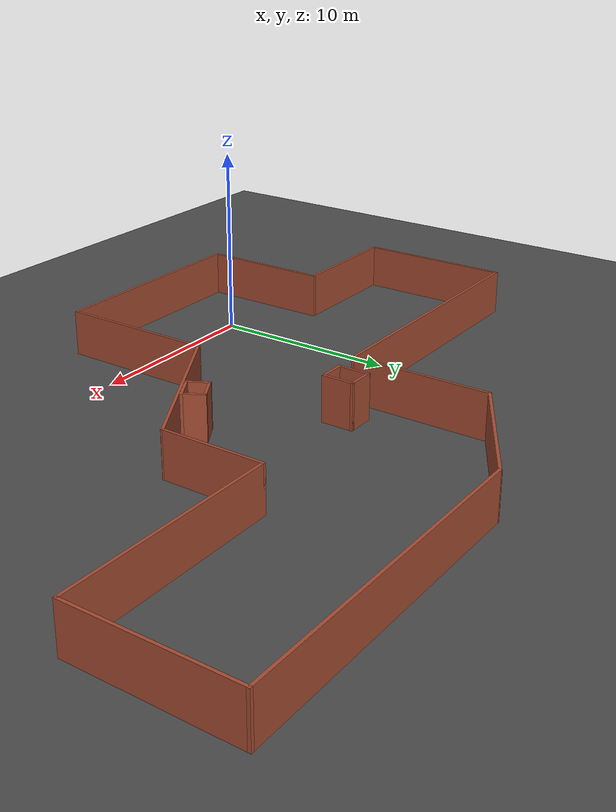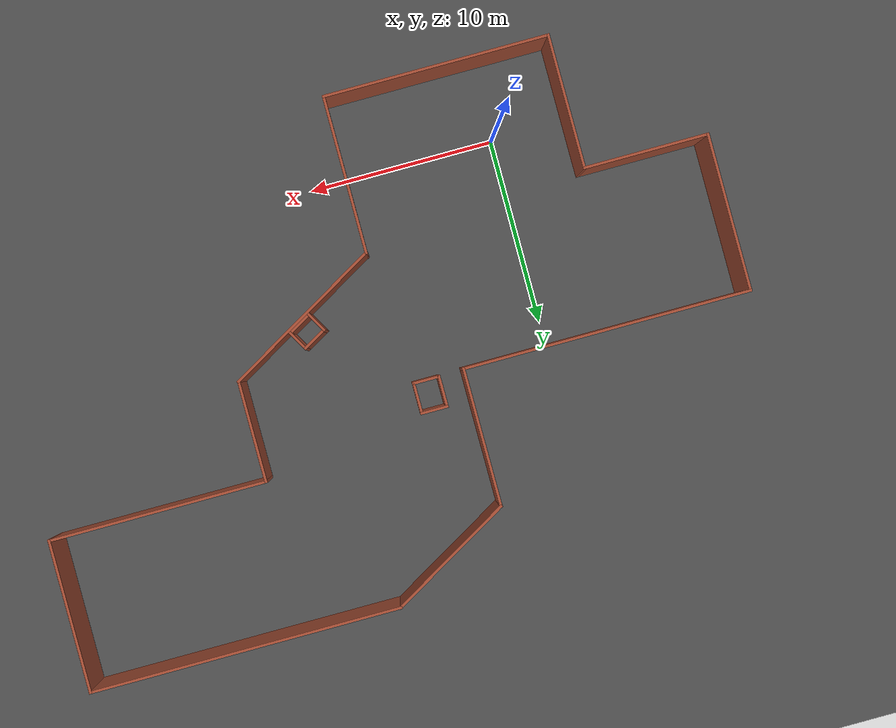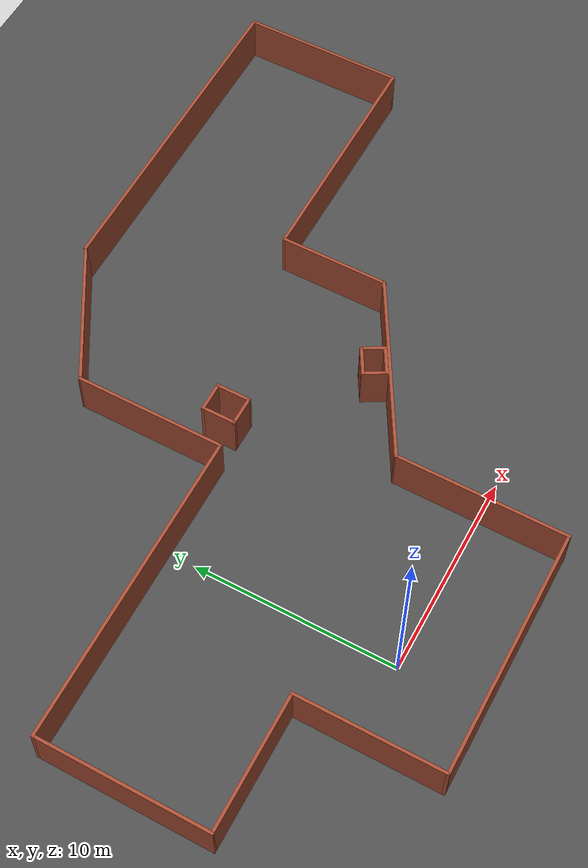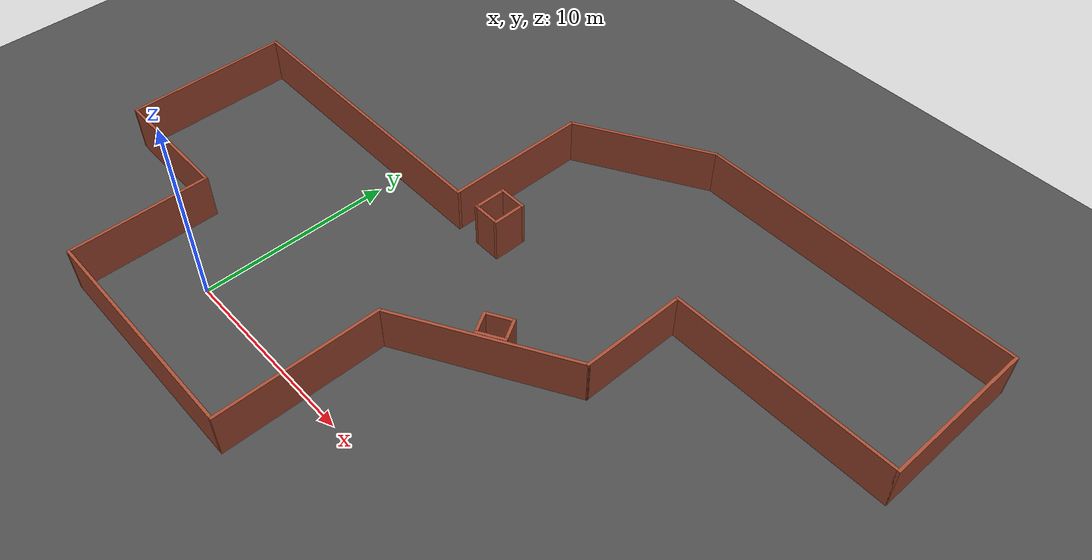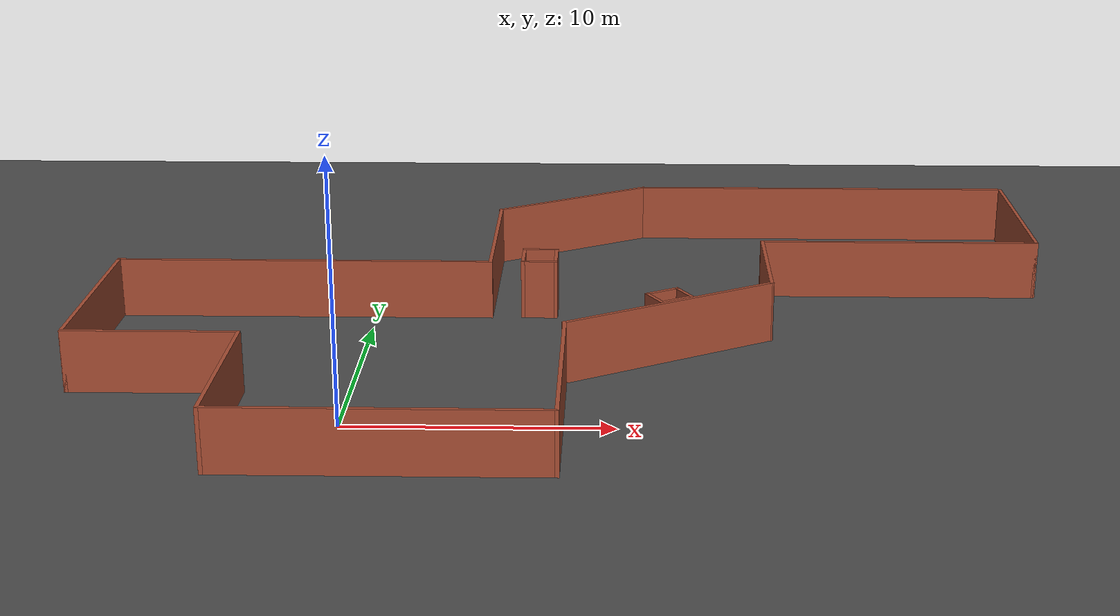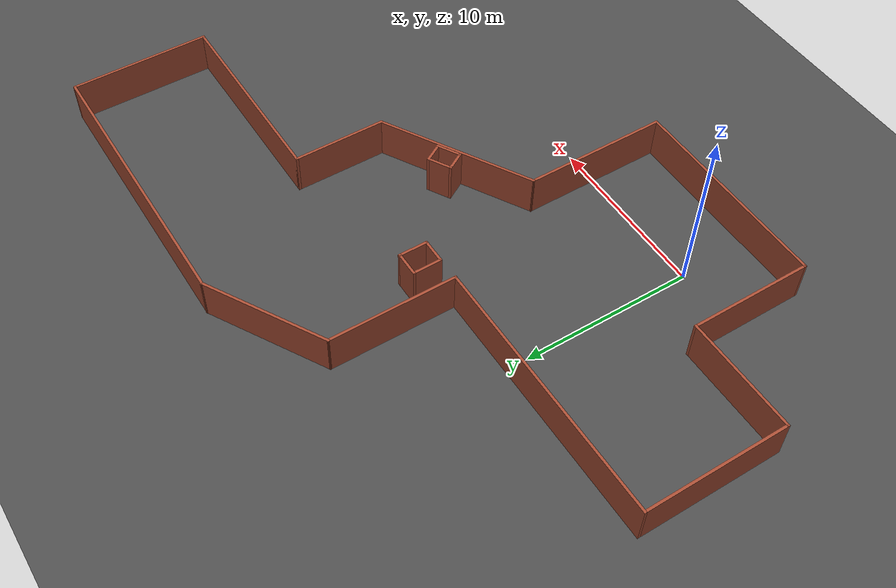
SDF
<sdf version="1.6">
 <world name="default">
  <light name="sun" type="directional">
   <pose>0 0 10 0 -0 0</pose>
   <diffuse>0.8 0.8 0.8 1</diffuse>
   <specular>0.2 0.2 0.2 1</specular>
   <attenuation>
    <range>1000</range>
    <constant>0.9</constant>
    <linear>0.01</linear>
    <quadratic>0.001</quadratic>
   </attenuation>
   <direction>-0.5 0.1 -0.9</direction>
  </light>
  <model name="ground_plane">
   <static>1</static>
   <link name="link">
    <collision name="collision">
     <geometry><plane><normal>0 0 1</normal><size>100 100</size></plane></geometry>
     <surface>
      <contact><collide_bitmask>65535</collide_bitmask></contact>
      <friction><ode><mu>100</mu><mu2>50</mu2></ode></friction>
     </surface>
    </collision>
    <visual name="visual">
     <cast_shadows>0</cast_shadows>
     <geometry><plane><normal>0 0 1</normal><size>100 100</size></plane></geometry>
     <material>
      <script><uri>file://media/materials/scripts/gazebo.material</uri><name>Gazebo/Grey</name></script>
     </material>
    </visual>
   </link>
  </model>
  <model name="asphalt_plane">
   <static>1</static>
   <link name="link">
    <collision name="collision"><geometry><box><size>200 200 0.1</size></box></geometry></collision>
    <visual name="visual">
     <cast_shadows>0</cast_shadows>
     <geometry><box><size>200 200 0.1</size></box></geometry>
     <material>
      <script>
       <uri>model://asphalt_plane/materials/scripts</uri>
       <uri>model://asphalt_plane/materials/textures</uri>
       <name>vrc/asphalt</name>
      </script>
     </material>
    </visual>
   </link>
  </model>
  <physics name="default_physics" default="0" type="ode">
   <ode>
    <solver>
     <type>quick</type>
     <iters>10</iters>
     <sor>1.3</sor>
     <use_dynamic_moi_rescaling>0</use_dynamic_moi_rescaling>
    </solver>
    <constraints>
     <cfm>0</cfm>
     <erp>0.2</erp>
     <contact_max_correcting_vel>100</contact_max_correcting_vel>
     <contact_surface_layer>0.001</contact_surface_layer>
    </constraints>
   </ode>
   <max_step_size>0.002</max_step_size>
   <real_time_factor>1</real_time_factor>
   <real_time_update_rate>500</real_time_update_rate>
  </physics>
  <gravity>0 0 -9.8066</gravity>
  <magnetic_field>6e-06 2.3e-05 -4.2e-05</magnetic_field>
  <atmosphere type="adiabatic"/>
  <scene><ambient>0.4 0.4 0.4 1</ambient><background>0.7 0.7 0.7 1</background><shadows>1</shadows></scene>
  <audio><device>default</device></audio>
  <spherical_coordinates>
   <surface_model>EARTH_WGS84</surface_model>
   <latitude_deg>0</latitude_deg>
   <longitude_deg>0</longitude_deg>
   <elevation>0</elevation>
   <heading_deg>0</heading_deg>
  </spherical_coordinates>
  <model name="complex_home_6">
   <pose>8.54184 9.10691 0 0 -0 0</pose>
   <link name="Wall_10">
    <collision name="Wall_10_Collision">
     <geometry><box><size>8.25 0.15 2.5</size></box></geometry>
     <pose>0 0 1.25 0 -0 0</pose>
    </collision>
    <visual name="Wall_10_Visual">
     <pose>0 0 1.25 0 -0 0</pose>
     <geometry><box><size>8.25 0.15 2.5</size></box></geometry>
     <material>
      <script><uri>file://media/materials/scripts/gazebo.material</uri><name>Gazebo/Bricks</name></script>
      <ambient>1 1 1 1</ambient>
     </material>
     <meta><layer>0</layer></meta>
    </visual>
    <pose>19.1576 9.17389 0 0 -0 1.5708</pose>
   </link>
   <link name="Wall_11">
    <collision name="Wall_11_Collision">
     <geometry><box><size>16.75 0.15 2.5</size></box></geometry>
     <pose>0 0 1.25 0 -0 0</pose>
    </collision>
    <visual name="Wall_11_Visual">
     <pose>0 0 1.25 0 -0 0</pose>
     <geometry><box><size>16.75 0.15 2.5</size></box></geometry>
     <material>
      <script><uri>file://media/materials/scripts/gazebo.material</uri><name>Gazebo/Bricks</name></script>
      <ambient>1 1 1 1</ambient>
     </material>
     <meta><layer>0</layer></meta>
    </visual>
    <pose>10.8576 13.2239 0 0 -0 3.14159</pose>
   </link>
   <link name="Wall_12">
    <collision name="Wall_12_Collision">
     <geometry><box><size>7.5 0.15 2.5</size></box></geometry>
     <pose>0 0 1.25 0 -0 0</pose>
    </collision>
    <visual name="Wall_12_Visual">
     <pose>0 0 1.25 0 -0 0</pose>
     <geometry><box><size>7.5 0.15 2.5</size></box></geometry>
     <material>
      <script><uri>file://media/materials/scripts/gazebo.material</uri><name>Gazebo/Bricks</name></script>
      <ambient>1 1 1 1</ambient>
     </material>
     <meta><layer>0</layer></meta>
    </visual>
    <pose>-0.625 11.3864 0 0 -0 -2.61799</pose>
   </link>
   <link name="Wall_13">
    <collision name="Wall_13_Collision">
     <geometry><box><size>7.5 0.15 2.5</size></box></geometry>
     <pose>0 0 1.25 0 -0 0</pose>
    </collision>
    <visual name="Wall_13_Visual">
     <pose>0 0 1.25 0 -0 0</pose>
     <geometry><box><size>7.5 0.15 2.5</size></box></geometry>
     <material>
      <script><uri>file://media/materials/scripts/gazebo.material</uri><name>Gazebo/Bricks</name></script>
      <ambient>1 1 1 1</ambient>
     </material>
     <meta><layer>0</layer></meta>
    </visual>
    <pose>-3.80764 5.87389 0 0 -0 -1.5708</pose>
   </link>
   <link name="Wall_14">
    <collision name="Wall_14_Collision">
     <geometry><box><size>15.5 0.15 2.5</size></box></geometry>
     <pose>0 0 1.25 0 -0 0</pose>
    </collision>
    <visual name="Wall_14_Visual">
     <pose>0 0 1.25 0 -0 0</pose>
     <geometry><box><size>15.5 0.15 2.5</size></box></geometry>
     <material>
      <script><uri>file://media/materials/scripts/gazebo.material</uri><name>Gazebo/Bricks</name></script>
      <ambient>1 1 1 1</ambient>
     </material>
     <meta><layer>0</layer></meta>
    </visual>
    <pose>-11.4826 2.19889 0 0 -0 3.14159</pose>
   </link>
   <link name="Wall_15">
    <collision name="Wall_15_Collision">
     <geometry><box><size>8.5 0.15 2.5</size></box></geometry>
     <pose>0 0 1.25 0 -0 0</pose>
    </collision>
    <visual name="Wall_15_Visual">
     <pose>0 0 1.25 0 -0 0</pose>
     <geometry><box><size>8.5 0.15 2.5</size></box></geometry>
     <material>
      <script><uri>file://media/materials/scripts/gazebo.material</uri><name>Gazebo/Bricks</name></script>
      <ambient>1 1 1 1</ambient>
     </material>
     <meta><layer>0</layer></meta>
    </visual>
    <pose>-19.1576 -1.97611 0 0 -0 -1.5708</pose>
   </link>
   <link name="Wall_16">
    <collision name="Wall_16_Collision">
     <geometry><box><size>6.75 0.15 2.5</size></box></geometry>
     <pose>0 0 1.25 0 -0 0</pose>
    </collision>
    <visual name="Wall_16_Visual">
     <pose>0 0 1.25 0 -0 0</pose>
     <geometry><box><size>6.75 0.15 2.5</size></box></geometry>
     <material>
      <script><uri>file://media/materials/scripts/gazebo.material</uri><name>Gazebo/Bricks</name></script>
      <ambient>1 1 1 1</ambient>
     </material>
     <meta><layer>0</layer></meta>
    </visual>
    <pose>-15.8576 -6.15111 0 0 -0 0</pose>
   </link>
   <link name="Wall_18">
    <collision name="Wall_18_Collision">
     <geometry><box><size>7.25047 0.15 2.5</size></box></geometry>
     <pose>0 0 1.25 0 -0 0</pose>
    </collision>
    <visual name="Wall_18_Visual">
     <pose>0 0 1.25 0 -0 0</pose>
     <geometry><box><size>7.25047 0.15 2.5</size></box></geometry>
     <material>
      <script><uri>file://media/materials/scripts/gazebo.material</uri><name>Gazebo/Bricks</name></script>
      <ambient>1 1 1 1</ambient>
     </material>
     <meta><layer>0</layer></meta>
    </visual>
    <pose>-12.5576 -9.70111 0 0 -0 -1.5708</pose>
   </link>
   <link name="Wall_20">
    <collision name="Wall_20_Collision">
     <geometry><box><size>12.1679 0.15 2.5</size></box></geometry>
     <pose>0 0 1.25 0 -0 0</pose>
    </collision>
    <visual name="Wall_20_Visual">
     <pose>0 0 1.25 0 -0 0</pose>
     <geometry><box><size>12.1679 0.15 2.5</size></box></geometry>
     <material>
      <script><uri>file://media/materials/scripts/gazebo.material</uri><name>Gazebo/Bricks</name></script>
      <ambient>1 1 1 1</ambient>
     </material>
     <meta><layer>0</layer></meta>
    </visual>
    <pose>-6.54867 -13.2511 0 0 -0 0</pose>
   </link>
   <link name="Wall_6">
    <collision name="Wall_6_Collision">
     <geometry><box><size>8.5 0.15 2.5</size></box></geometry>
     <pose>0 0 1.25 0 -0 0</pose>
    </collision>
    <visual name="Wall_6_Visual">
     <pose>0 0 1.25 0 -0 0</pose>
     <geometry><box><size>8.5 0.15 2.5</size></box></geometry>
     <material>
      <script><uri>file://media/materials/scripts/gazebo.material</uri><name>Gazebo/Bricks</name></script>
      <ambient>1 1 1 1</ambient>
     </material>
     <meta><layer>0</layer></meta>
    </visual>
    <pose>-0.539694 -9.07611 0 0 -0 1.5708</pose>
   </link>
   <link name="Wall_7">
    <collision name="Wall_7_Collision">
     <geometry><box><size>9.5 0.15 2.5</size></box></geometry>
     <pose>0 0 1.25 0 -0 0</pose>
    </collision>
    <visual name="Wall_7_Visual">
     <pose>0 0 1.25 0 -0 0</pose>
     <geometry><box><size>9.5 0.15 2.5</size></box></geometry>
     <material>
      <script><uri>file://media/materials/scripts/gazebo.material</uri><name>Gazebo/Bricks</name></script>
      <ambient>1 1 1 1</ambient>
     </material>
     <meta><layer>0</layer></meta>
    </visual>
    <pose>3.50897 -2.56361 0 0 -0 0.523599</pose>
   </link>
   <link name="Wall_8">
    <collision name="Wall_8_Collision">
     <geometry><box><size>5.5 0.15 2.5</size></box></geometry>
     <pose>0 0 1.25 0 -0 0</pose>
    </collision>
    <visual name="Wall_8_Visual">
     <pose>0 0 1.25 0 -0 0</pose>
     <geometry><box><size>5.5 0.15 2.5</size></box></geometry>
     <material>
      <script><uri>file://media/materials/scripts/gazebo.material</uri><name>Gazebo/Bricks</name></script>
      <ambient>1 1 1 1</ambient>
     </material>
     <meta><layer>0</layer></meta>
    </visual>
    <pose>7.55764 2.44889 0 0 -0 1.5708</pose>
   </link>
   <link name="Wall_9">
    <collision name="Wall_9_Collision">
     <geometry><box><size>11.75 0.15 2.5</size></box></geometry>
     <pose>0 0 1.25 0 -0 0</pose>
    </collision>
    <visual name="Wall_9_Visual">
     <pose>0 0 1.25 0 -0 0</pose>
     <geometry><box><size>11.75 0.15 2.5</size></box></geometry>
     <material>
      <script><uri>file://media/materials/scripts/gazebo.material</uri><name>Gazebo/Bricks</name></script>
      <ambient>1 1 1 1</ambient>
     </material>
     <meta><layer>0</layer></meta>
    </visual>
    <pose>13.3576 5.12389 0 0 -0 0</pose>
   </link>
   <static>1</static>
  </model>
  <model name="complex_home_6_obstacles">
   <pose>9.47445 9.71794 0 0 -0 0</pose>
   <link name="Wall_10">
    <collision name="Wall_10_Collision">
     <geometry><box><size>1.5 0.15 2.5</size></box></geometry>
     <pose>0 0 1.25 0 -0 0</pose>
    </collision>
    <visual name="Wall_10_Visual">
     <pose>0 0 1.25 0 -0 0</pose>
     <geometry><box><size>1.5 0.15 2.5</size></box></geometry>
     <material>
      <script><uri>file://media/materials/scripts/gazebo.material</uri><name>Gazebo/Bricks</name></script>
      <ambient>1 1 1 1</ambient>
     </material>
     <meta><layer>0</layer></meta>
    </visual>
    <pose>-2.73705 3.23346 0 0 -0 3.14159</pose>
   </link>
   <link name="Wall_13">
    <collision name="Wall_13_Collision">
     <geometry><box><size>1.25 0.15 2.5</size></box></geometry>
     <pose>0 0 1.25 0 -0 0</pose>
    </collision>
    <visual name="Wall_13_Visual">
     <pose>0 0 1.25 0 -0 0</pose>
     <geometry><box><size>1.25 0.15 2.5</size></box></geometry>
     <material>
      <script><uri>file://media/materials/scripts/gazebo.material</uri><name>Gazebo/Bricks</name></script>
      <ambient>1 1 1 1</ambient>
     </material>
     <meta><layer>0</layer></meta>
    </visual>
    <pose>1.94046 -2.7297 0 0 -0 2.0944</pose>
   </link>
   <link name="Wall_14">
    <collision name="Wall_14_Collision">
     <geometry><box><size>1.5 0.15 2.5</size></box></geometry>
     <pose>0 0 1.25 0 -0 0</pose>
    </collision>
    <visual name="Wall_14_Visual">
     <pose>0 0 1.25 0 -0 0</pose>
     <geometry><box><size>1.5 0.15 2.5</size></box></geometry>
     <material>
      <script><uri>file://media/materials/scripts/gazebo.material</uri><name>Gazebo/Bricks</name></script>
      <ambient>1 1 1 1</ambient>
     </material>
     <meta><layer>0</layer></meta>
    </visual>
    <pose>2.25003 -1.91589 0 0 -0 0.523599</pose>
   </link>
   <link name="Wall_15">
    <collision name="Wall_15_Collision">
     <geometry><box><size>1.25 0.15 2.5</size></box></geometry>
     <pose>0 0 1.25 0 -0 0</pose>
    </collision>
    <visual name="Wall_15_Visual">
     <pose>0 0 1.25 0 -0 0</pose>
     <geometry><box><size>1.25 0.15 2.5</size></box></geometry>
     <material>
      <script><uri>file://media/materials/scripts/gazebo.material</uri><name>Gazebo/Bricks</name></script>
      <ambient>1 1 1 1</ambient>
     </material>
     <meta><layer>0</layer></meta>
    </visual>
    <pose>3.1096 -2.0547 0 0 -0 -1.0472</pose>
   </link>
   <link name="Wall_16">
    <collision name="Wall_16_Collision">
     <geometry><box><size>1.5 0.15 2.5</size></box></geometry>
     <pose>0 0 1.25 0 -0 0</pose>
    </collision>
    <visual name="Wall_16_Visual">
     <pose>0 0 1.25 0 -0 0</pose>
     <geometry><box><size>1.5 0.15 2.5</size></box></geometry>
     <material>
      <script><uri>file://media/materials/scripts/gazebo.material</uri><name>Gazebo/Bricks</name></script>
      <ambient>1 1 1 1</ambient>
     </material>
     <meta><layer>0</layer></meta>
    </visual>
    <pose>2.80003 -2.86851 0 0 -0 -2.61799</pose>
   </link>
   <link name="Wall_7">
    <collision name="Wall_7_Collision">
     <geometry><box><size>1.75 0.15 2.5</size></box></geometry>
     <pose>0 0 1.25 0 -0 0</pose>
    </collision>
    <visual name="Wall_7_Visual">
     <pose>0 0 1.25 0 -0 0</pose>
     <geometry><box><size>1.75 0.15 2.5</size></box></geometry>
     <material>
      <script><uri>file://media/materials/scripts/gazebo.material</uri><name>Gazebo/Bricks</name></script>
      <ambient>1 1 1 1</ambient>
     </material>
     <meta><layer>0</layer></meta>
    </visual>
    <pose>-3.41205 2.43346 0 0 -0 -1.5708</pose>
   </link>
   <link name="Wall_8">
    <collision name="Wall_8_Collision">
     <geometry><box><size>1.5 0.15 2.5</size></box></geometry>
     <pose>0 0 1.25 0 -0 0</pose>
    </collision>
    <visual name="Wall_8_Visual">
     <pose>0 0 1.25 0 -0 0</pose>
     <geometry><box><size>1.5 0.15 2.5</size></box></geometry>
     <material>
      <script><uri>file://media/materials/scripts/gazebo.material</uri><name>Gazebo/Bricks</name></script>
      <ambient>1 1 1 1</ambient>
     </material>
     <meta><layer>0</layer></meta>
    </visual>
    <pose>-2.73705 1.63347 0 0 -0 0</pose>
   </link>
   <link name="Wall_9">
    <collision name="Wall_9_Collision">
     <geometry><box><size>1.75 0.15 2.5</size></box></geometry>
     <pose>0 0 1.25 0 -0 0</pose>
    </collision>
    <visual name="Wall_9_Visual">
     <pose>0 0 1.25 0 -0 0</pose>
     <geometry><box><size>1.75 0.15 2.5</size></box></geometry>
     <material>
      <script><uri>file://media/materials/scripts/gazebo.material</uri><name>Gazebo/Bricks</name></script>
      <ambient>1 1 1 1</ambient>
     </material>
     <meta><layer>0</layer></meta>
    </visual>
    <pose>-2.06205 2.43346 0 0 -0 1.5708</pose>
   </link>
   <static>1</static>
  </model>
 </world>
</sdf>
